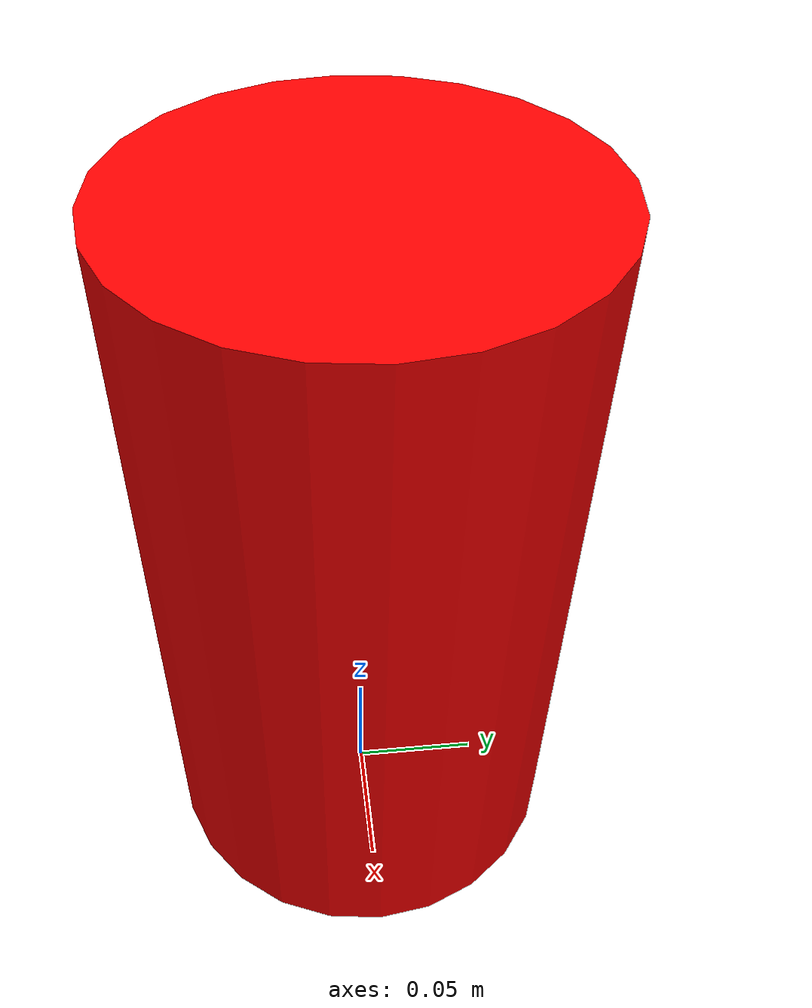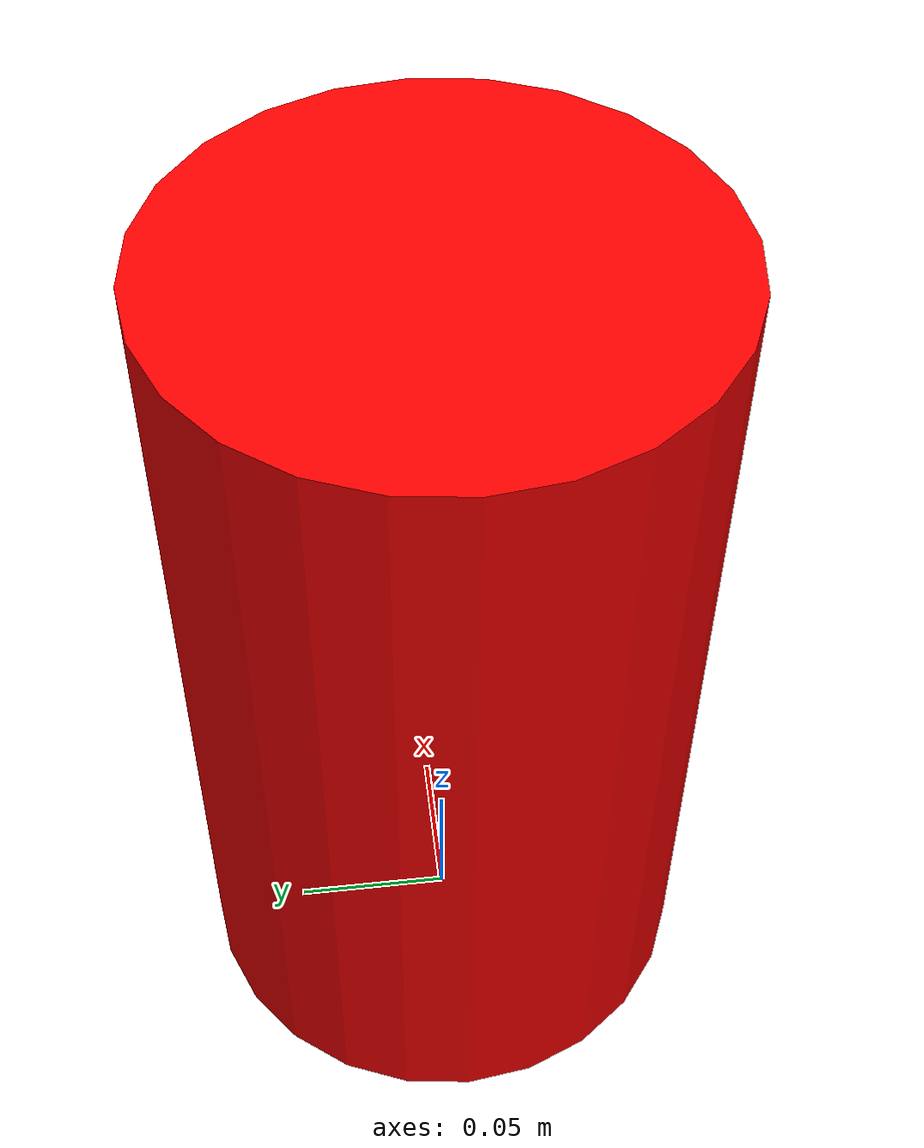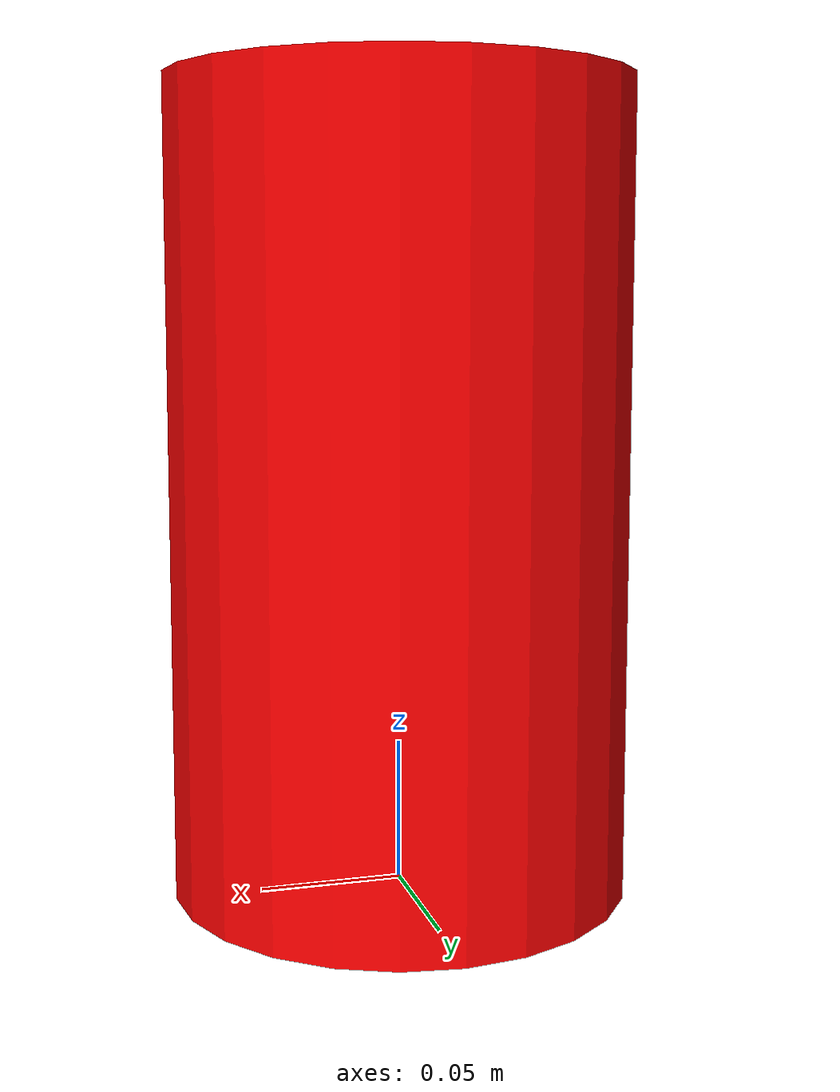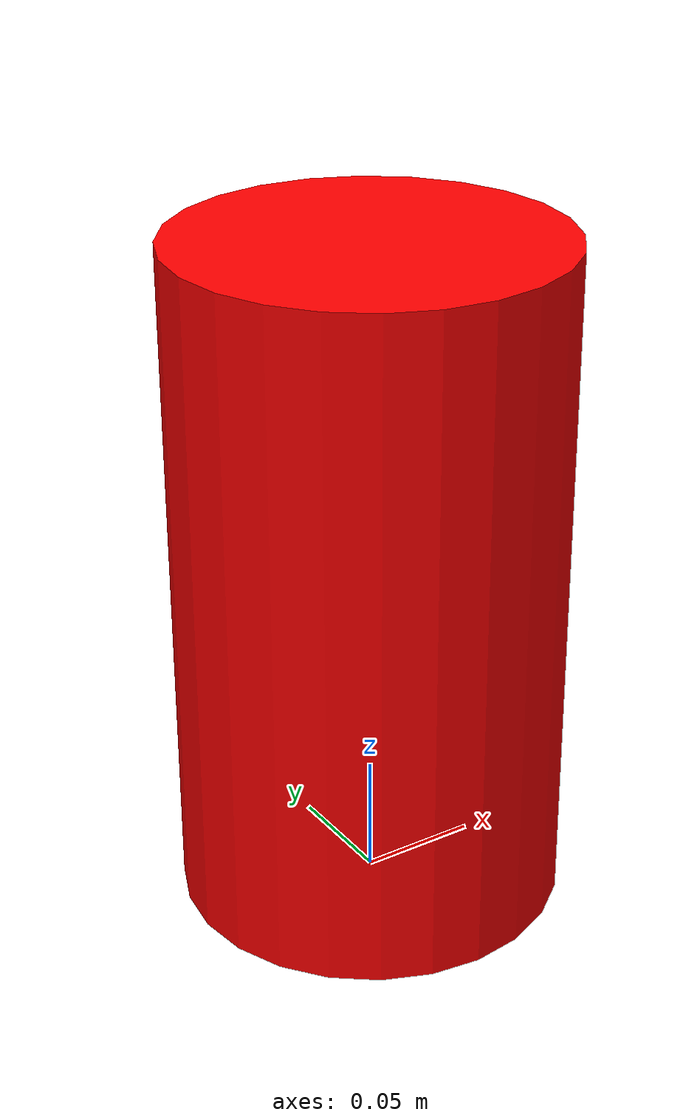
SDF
<?xml version='1.0'?>
<sdf version='1.4'>
  <model name="beacon_0">
	<static>true</static>
          <link name='chassis_lower'>
            <pose>0 0 0.14 0 0 0</pose>

            <collision name='collision'>
              <geometry>
                <cylinder>
                  <radius>.04</radius>
		  <length>.280</length>
                </cylinder>
              </geometry>
            </collision>

            <visual name='visual'>
              <geometry>
                <cylinder>
                  <radius>.08</radius>
		  <length>.280</length>
                </cylinder>
              </geometry>
        	<material>
          	  <ambient>1 0 0 1</ambient>
          	  <diffuse>1 0 0 1</diffuse>
          	  <specular>0.1 0.1 0.1 1</specular>
         	  <emissive>0 0 0 0</emissive>
        	</material>
            </visual>
          </link>

  </model>
</sdf>
